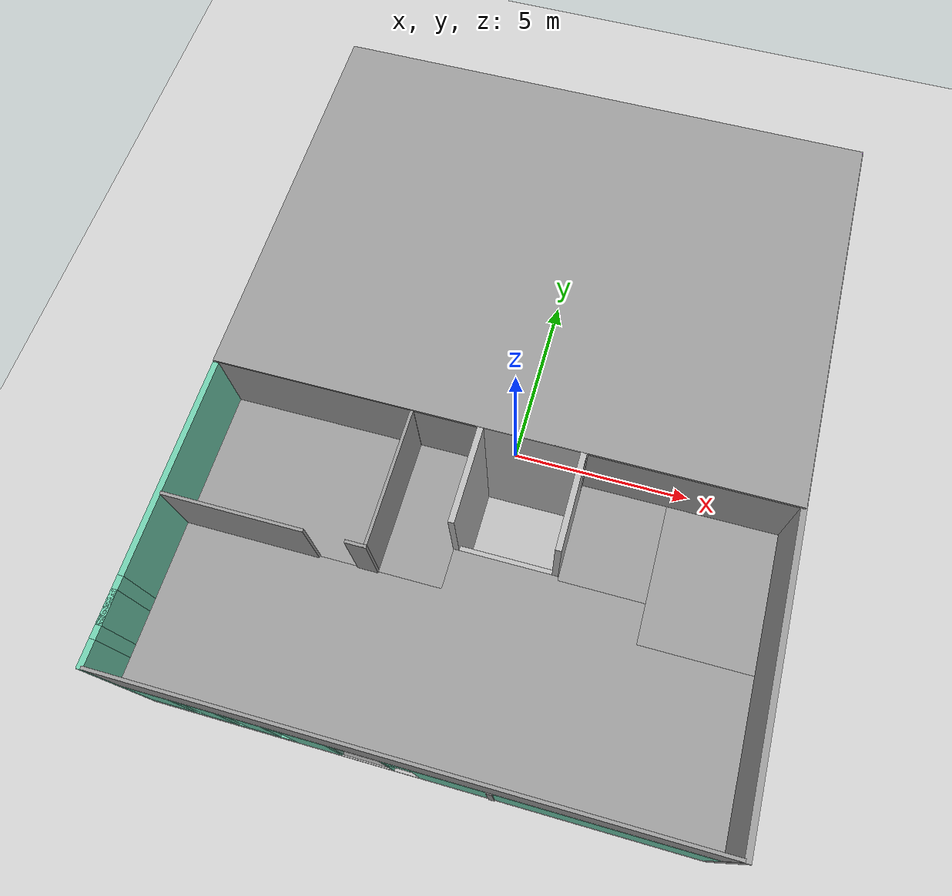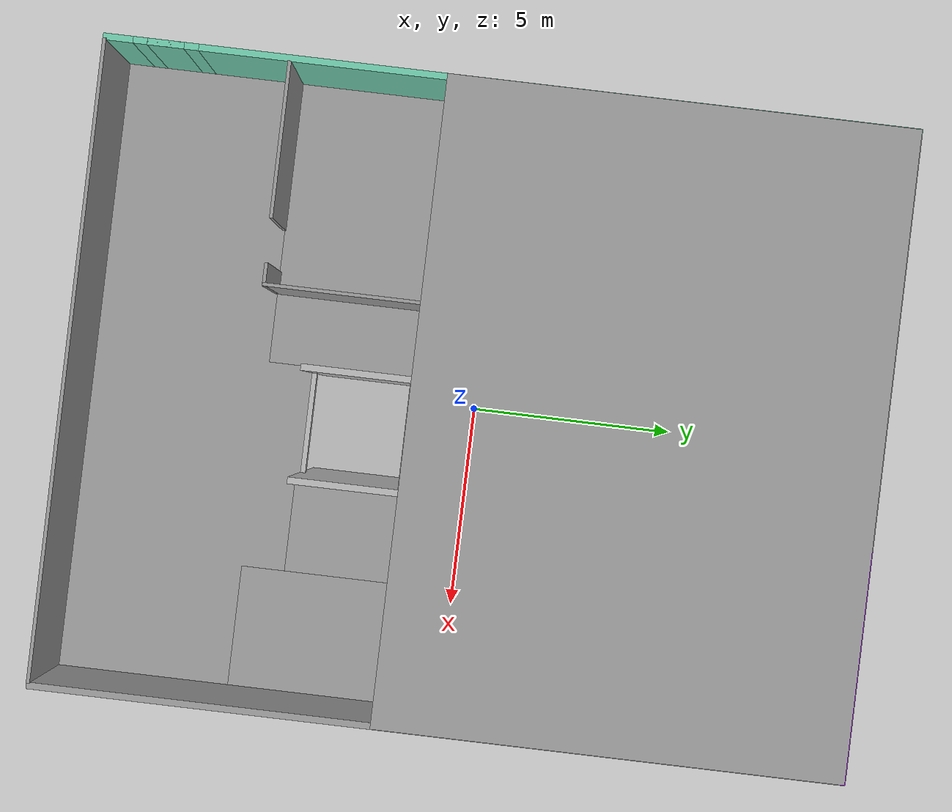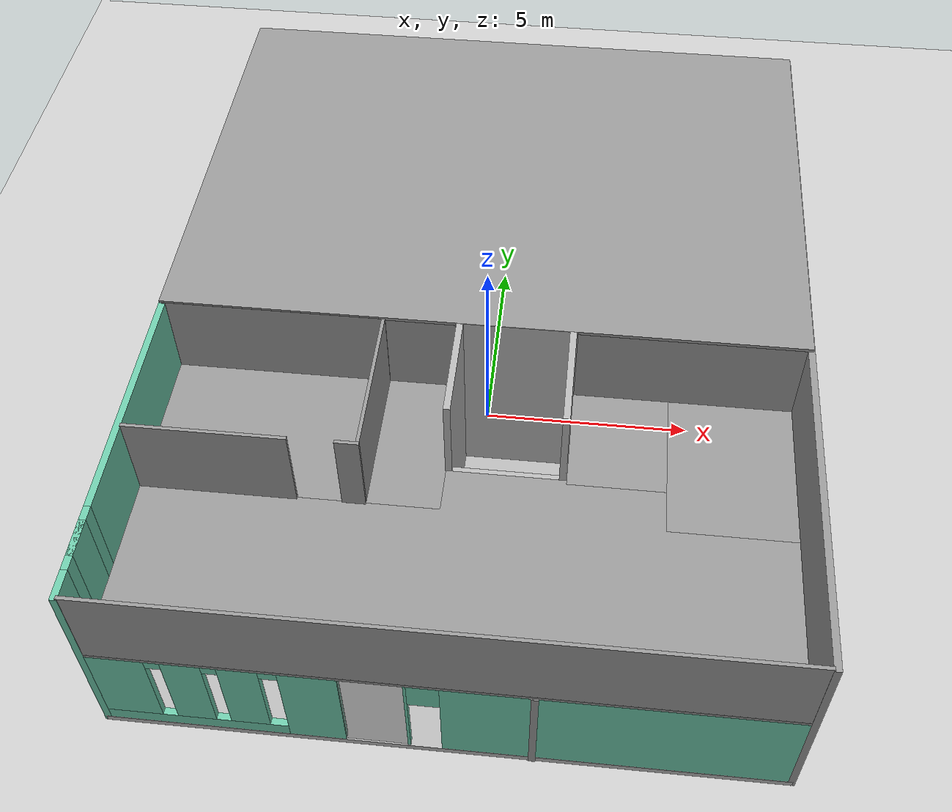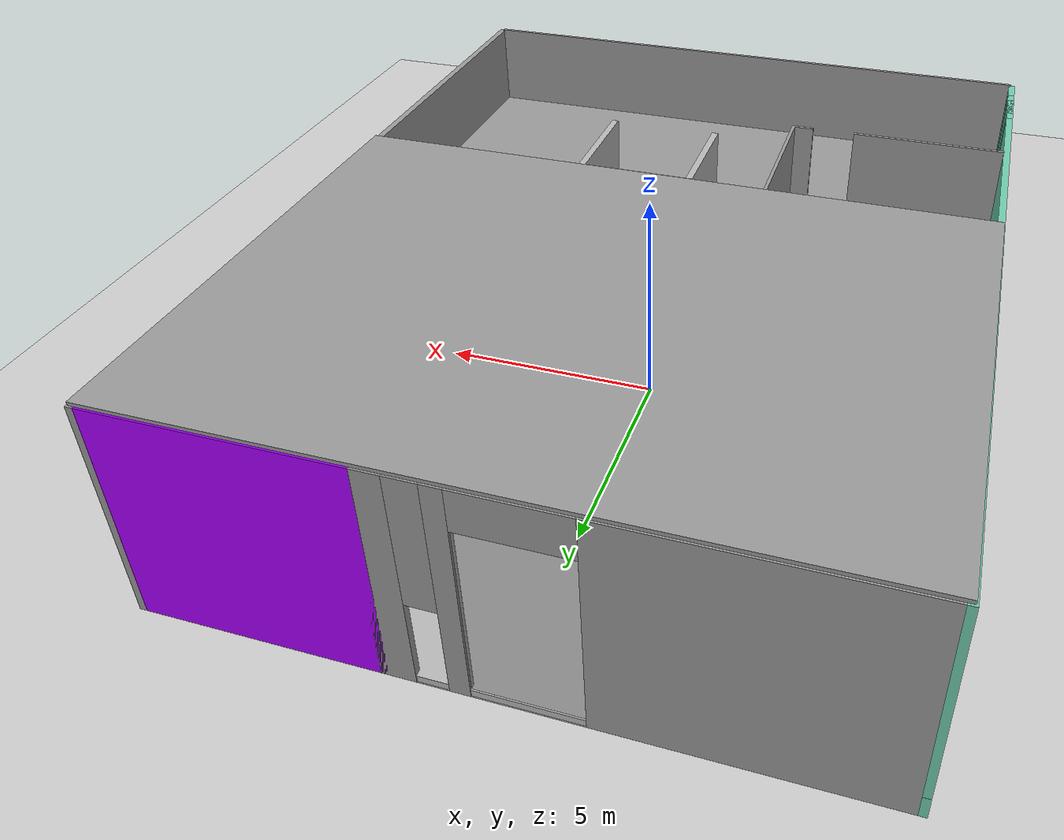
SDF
<?xml version="1.0" ?>
<sdf version="1.5">
  <world name="default">
    <!-- Disable shadows for now since they make the interiors
         look awful -->
    <scene>
      <shadows>0</shadows>
    </scene>

    <!-- Position the user camera -->
    <gui>
      <camera name="user_camera">
        <pose>16 -30 17 0 0.5235 2.09</pose>
      </camera>
    </gui>

    <!-- A global light source -->
    <include>
      <uri>model://sun</uri>
    </include>

    <!-- A ground plane -->
    <include>
      <uri>model://ground_plane</uri>
    </include>

    <!-- The OSRF building with a fictitious elevator shaft -->
    <include>
      <uri>model://osrf_elevator</uri>
    </include>

  </world>
</sdf>

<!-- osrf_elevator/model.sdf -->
<sdf version='1.5'>
  <model name='osrf_elevator'>
    <link name='Wall_0'>
      <pose>-7.17647 0.013004 0 0 0 1.57174</pose>
      <visual name='Wall_0_Visual_0'>
        <meta>
          <layer>0</layer>
        </meta>
        <pose>-8.72596 0 2.4385 0 -0 0</pose>
        <geometry>
          <box>
            <size>0.663656 0.15 4.877</size>
          </box>
        </geometry>
        <material>
          <script>
            <uri>file://media/materials/scripts/gazebo.material</uri>
            <name>Gazebo/Grey</name>
          </script>
          <ambient>0.435294 0.796078 0.67451 1</ambient>
        </material>
      </visual>
      <collision name='Wall_0_Collision_0'>
        <geometry>
          <box>
            <size>0.663656 0.15 4.877</size>
          </box>
        </geometry>
        <pose>-8.72596 0 2.4385 0 -0 0</pose>
      </collision>
      <visual name='Wall_0_Visual_1'>
        <meta>
          <layer>0</layer>
        </meta>

        <pose>0.331828 0 0.25 0 -0 0</pose>
        <geometry>
          <box>
            <size>17.4519 0.15 0.5</size>
          </box>
        </geometry>
        <material>
          <script>
            <uri>file://media/materials/scripts/gazebo.material</uri>
            <name>Gazebo/Grey</name>
          </script>
          <ambient>0.435294 0.796078 0.67451 1</ambient>
        </material>
      </visual>
      <collision name='Wall_0_Collision_1'>
        <geometry>
          <box>
            <size>17.4519 0.15 0.5</size>
          </box>
        </geometry>
        <pose>0.331828 0 0.25 0 -0 0</pose>
      </collision>
      <visual name='Wall_0_Visual_2'>
        <meta>
          <layer>0</layer>
        </meta>

        <pose>-7.67281 0 2.6885 0 -0 0</pose>
        <geometry>
          <box>
            <size>0.816657 0.15 4.377</size>
          </box>
        </geometry>
        <material>
          <script>
            <uri>file://media/materials/scripts/gazebo.material</uri>
            <name>Gazebo/Grey</name>
          </script>
          <ambient>0.435294 0.796078 0.67451 1</ambient>
        </material>
      </visual>
      <collision name='Wall_0_Collision_2'>
        <geometry>
          <box>
            <size>0.816657 0.15 4.377</size>
          </box>
        </geometry>
        <pose>-7.67281 0 2.6885 0 -0 0</pose>
      </collision>
      <visual name='Wall_0_Visual_3'>
        <meta>
          <layer>0</layer>
        </meta>

        <pose>1.05709 0 2.6885 0 -0 0</pose>
        <geometry>
          <box>
            <size>16.0014 0.15 4.377</size>
          </box>
        </geometry>
        <material>
          <script>
            <uri>file://media/materials/scripts/gazebo.material</uri>
            <name>Gazebo/Grey</name>
          </script>
          <ambient>0.435294 0.796078 0.67451 1</ambient>
        </material>
      </visual>
      <collision name='Wall_0_Collision_3'>
        <geometry>
          <box>
            <size>16.0014 0.15 4.377</size>
          </box>
        </geometry>
        <pose>1.05709 0 2.6885 0 -0 0</pose>
      </collision>
      <visual name='Wall_0_Visual_4'>
        <meta>
          <layer>0</layer>
        </meta>

        <pose>-8.23763 0 3.6885 0 -0 0</pose>
        <geometry>
          <box>
            <size>0.313 0.15 2.377</size>
          </box>
        </geometry>
        <material>
          <script>
            <uri>file://media/materials/scripts/gazebo.material</uri>
            <name>Gazebo/Grey</name>
          </script>
          <ambient>0.435294 0.796078 0.67451 1</ambient>
        </material>
      </visual>
      <collision name='Wall_0_Collision_4'>
        <geometry>
          <box>
            <size>0.313 0.15 2.377</size>
          </box>
        </geometry>
        <pose>-8.23763 0 3.6885 0 -0 0</pose>
      </collision>
      <visual name='Wall_0_Visual_5'>
        <meta>
          <layer>0</layer>
        </meta>

        <pose>-7.10405 0 3.6885 0 -0 0</pose>
        <geometry>
          <box>
            <size>0.320861 0.15 2.377</size>
          </box>
        </geometry>
        <material>
          <script>
            <uri>file://media/materials/scripts/gazebo.material</uri>
            <name>Gazebo/Grey</name>
          </script>
          <ambient>0.435294 0.796078 0.67451 1</ambient>
        </material>
      </visual>
      <collision name='Wall_0_Collision_5'>
        <geometry>
          <box>
            <size>0.320861 0.15 2.377</size>
          </box>
        </geometry>
        <pose>-7.10405 0 3.6885 0 -0 0</pose>
      </collision>
      <visual name='Wall_0_Visual_6'>
        <meta>
          <layer>0</layer>
        </meta>

        <pose>-7.67281 0 4.877 0 -0 0</pose>
        <geometry>
          <box>
            <size>0.816657 0.15 0</size>
          </box>
        </geometry>
        <material>
          <script>
            <uri>file://media/materials/scripts/gazebo.material</uri>
            <name>Gazebo/Grey</name>
          </script>
          <ambient>0.435294 0.796078 0.67451 1</ambient>
        </material>
      </visual>
      <collision name='Wall_0_Collision_6'>
        <geometry>
          <box>
            <size>0.816657 0.15 0</size>
          </box>
        </geometry>
        <pose>-7.67281 0 4.877 0 -0 0</pose>
      </collision>
      <visual name='Wall_0_Visual_7'>
        <meta>
          <layer>0</layer>
        </meta>

        <pose>1.05709 0 4.877 0 -0 0</pose>
        <geometry>
          <box>
            <size>16.0014 0.15 0</size>
          </box>
        </geometry>
        <material>
          <script>
            <uri>file://media/materials/scripts/gazebo.material</uri>
            <name>Gazebo/Grey</name>
          </script>
          <ambient>0.435294 0.796078 0.67451 1</ambient>
        </material>
      </visual>
      <collision name='Wall_0_Collision_7'>
        <geometry>
          <box>
            <size>16.0014 0.15 0</size>
          </box>
        </geometry>
        <pose>1.05709 0 4.877 0 -0 0</pose>
      </collision>
    </link>
    <link name='Wall_10'>
      <pose>3.11003 -4.9485 0 0 -0 0</pose>
      <visual name='Wall_10_Visual_0'>
        <meta>
          <layer>0</layer>
        </meta>

        <pose>-1.73626 0 1.3715 0 -0 0</pose>
        <geometry>
          <box>
            <size>4.52747 0.15 2.743</size>
          </box>
        </geometry>
        <material>
          <script>
            <uri>file://media/materials/scripts/gazebo.material</uri>
            <name>Gazebo/Grey</name>
          </script>
          <ambient>0 0.666667 0 1</ambient>
        </material>
      </visual>
      <collision name='Wall_10_Collision_0'>
        <geometry>
          <box>
            <size>4.52747 0.15 2.743</size>
          </box>
        </geometry>
        <pose>-1.73626 0 1.3715 0 -0 0</pose>
      </collision>
      <visual name='Wall_10_Visual_1'>
        <meta>
          <layer>0</layer>
        </meta>

        <pose>2.58694 0 1.3715 0 -0 0</pose>
        <geometry>
          <box>
            <size>2.82611 0.15 2.743</size>
          </box>
        </geometry>
        <material>
          <script>
            <uri>file://media/materials/scripts/gazebo.material</uri>
            <name>Gazebo/Grey</name>
          </script>
          <ambient>0 0.666667 0 1</ambient>
        </material>
      </visual>
      <collision name='Wall_10_Collision_1'>
        <geometry>
          <box>
            <size>2.82611 0.15 2.743</size>
          </box>
        </geometry>
        <pose>2.58694 0 1.3715 0 -0 0</pose>
      </collision>
      <visual name='Wall_10_Visual_2'>
        <meta>
          <layer>0</layer>
        </meta>

        <pose>0.85068 0 2.3715 0 -0 0</pose>
        <geometry>
          <box>
            <size>0.646413 0.15 0.743</size>
          </box>
        </geometry>
        <material>
          <script>
            <uri>file://media/materials/scripts/gazebo.material</uri>
            <name>Gazebo/Grey</name>
          </script>
          <ambient>0 0.666667 0 1</ambient>
        </material>
      </visual>
      <collision name='Wall_10_Collision_2'>
        <geometry>
          <box>
            <size>0.646413 0.15 0.743</size>
          </box>
        </geometry>
        <pose>0.85068 0 2.3715 0 -0 0</pose>
      </collision>
    </link>
    <link name='Wall_14'>
      <pose>1.83803 -6.9775 0 0 -0 1.5708</pose>
      <visual name='Wall_14_Visual_0'>
        <meta>
          <layer>0</layer>
        </meta>

        <pose>-0.387674 0 1.3715 0 -0 0</pose>
        <geometry>
          <box>
            <size>3.41138 0.15 2.743</size>
          </box>
        </geometry>
        <material>
          <script>
            <uri>file://media/materials/scripts/gazebo.material</uri>
            <name>Gazebo/Grey</name>
          </script>
          <ambient>1 1 1 1</ambient>
        </material>
      </visual>
      <collision name='Wall_14_Collision_0'>
        <geometry>
          <box>
            <size>3.41138 0.15 2.743</size>
          </box>
        </geometry>
        <pose>-0.387674 0 1.3715 0 -0 0</pose>
      </collision>
      <visual name='Wall_14_Visual_1'>
        <meta>
          <layer>0</layer>
        </meta>

        <pose>2.00133 0 1.3715 0 -0 0</pose>
        <geometry>
          <box>
            <size>0.184063 0.15 2.743</size>
          </box>
        </geometry>
        <material>
          <script>
            <uri>file://media/materials/scripts/gazebo.material</uri>
            <name>Gazebo/Grey</name>
          </script>
          <ambient>1 1 1 1</ambient>
        </material>
      </visual>
      <collision name='Wall_14_Collision_1'>
        <geometry>
          <box>
            <size>0.184063 0.15 2.743</size>
          </box>
        </geometry>
        <pose>2.00133 0 1.3715 0 -0 0</pose>
      </collision>
      <visual name='Wall_14_Visual_2'>
        <meta>
          <layer>0</layer>
        </meta>

        <pose>1.61366 0 2.3715 0 -0 0</pose>
        <geometry>
          <box>
            <size>0.591285 0.15 0.743</size>
          </box>
        </geometry>
        <material>
          <script>
            <uri>file://media/materials/scripts/gazebo.material</uri>
            <name>Gazebo/Grey</name>
          </script>
          <ambient>1 1 1 1</ambient>
        </material>
      </visual>
      <collision name='Wall_14_Collision_2'>
        <geometry>
          <box>
            <size>0.591285 0.15 0.743</size>
          </box>
        </geometry>
        <pose>1.61366 0 2.3715 0 -0 0</pose>
      </collision>
    </link>
    <link name='Wall_16'>
      <collision name='Wall_16_Collision'>
        <geometry>
          <box>
            <size>5.12727 0.15 2.743</size>
          </box>
        </geometry>
        <pose>0 0 1.3715 0 -0 0</pose>
      </collision>
      <visual name='Wall_16_Visual'>
        <meta>
          <layer>0</layer>
        </meta>

        <pose>0 0 1.3715 0 -0 0</pose>
        <geometry>
          <box>
            <size>5.12727 0.15 2.743</size>
          </box>
        </geometry>
        <material>
          <script>
            <uri>file://media/materials/scripts/gazebo.material</uri>
            <name>Gazebo/Grey</name>
          </script>
          <ambient>1 1 1 1</ambient>
        </material>
      </visual>
      <pose>-4.68247 -1.4425 0 0 -0 0</pose>
    </link>
    <link name='Wall_17'>
      <pose>-2.19097 -3.185 0 0 0 -1.56907</pose>
      <visual name='Wall_17_Visual_0'>
        <meta>
          <layer>0</layer>
        </meta>

        <pose>-1.22855 0 1.3715 0 -0 0</pose>
        <geometry>
          <box>
            <size>1.17851 0.15 2.743</size>
          </box>
        </geometry>
        <material>
          <script>
            <uri>file://media/materials/scripts/gazebo.material</uri>
            <name>Gazebo/Grey</name>
          </script>
          <ambient>1 1 1 1</ambient>
        </material>
      </visual>
      <collision name='Wall_17_Collision_0'>
        <geometry>
          <box>
            <size>1.17851 0.15 2.743</size>
          </box>
        </geometry>
        <pose>-1.22855 0 1.3715 0 -0 0</pose>
      </collision>
      <visual name='Wall_17_Visual_1'>
        <meta>
          <layer>0</layer>
        </meta>

        <pose>0.886237 0 1.3715 0 -0 0</pose>
        <geometry>
          <box>
            <size>1.86314 0.15 2.743</size>
          </box>
        </geometry>
        <material>
          <script>
            <uri>file://media/materials/scripts/gazebo.material</uri>
            <name>Gazebo/Grey</name>
          </script>
          <ambient>1 1 1 1</ambient>
        </material>
      </visual>
      <collision name='Wall_17_Collision_1'>
        <geometry>
          <box>
            <size>1.86314 0.15 2.743</size>
          </box>
        </geometry>
        <pose>0.886237 0 1.3715 0 -0 0</pose>
      </collision>
      <visual name='Wall_17_Visual_2'>
        <meta>
          <layer>0</layer>
        </meta>

        <pose>1.18873 0 1.3715 0 -0 0</pose>
        <geometry>
          <box>
            <size>1.25815 0.15 2.743</size>
          </box>
        </geometry>
        <material>
          <script>
            <uri>file://media/materials/scripts/gazebo.material</uri>
            <name>Gazebo/Grey</name>
          </script>
          <ambient>1 1 1 1</ambient>
        </material>
      </visual>
      <collision name='Wall_17_Collision_2'>
        <geometry>
          <box>
            <size>1.25815 0.15 2.743</size>
          </box>
        </geometry>
        <pose>1.18873 0 1.3715 0 -0 0</pose>
      </collision>
      <visual name='Wall_17_Visual_3'>
        <meta>
          <layer>0</layer>
        </meta>

        <pose>-0.345304 0 2.3715 0 -0 0</pose>
        <geometry>
          <box>
            <size>0.587991 0.15 0.743</size>
          </box>
        </geometry>
        <material>
          <script>
            <uri>file://media/materials/scripts/gazebo.material</uri>
            <name>Gazebo/Grey</name>
          </script>
          <ambient>1 1 1 1</ambient>
        </material>
      </visual>
      <collision name='Wall_17_Collision_3'>
        <geometry>
          <box>
            <size>0.587991 0.15 0.743</size>
          </box>
        </geometry>
        <pose>-0.345304 0 2.3715 0 -0 0</pose>
      </collision>
    </link>
    <link name='Wall_18'>
      <collision name='Wall_18_Collision'>
        <geometry>
          <box>
            <size>5 0.15 2.743</size>
          </box>
        </geometry>
        <pose>0 0 1.3715 0 -0 0</pose>
      </collision>
      <visual name='Wall_18_Visual'>
        <meta>
          <layer>0</layer>
        </meta>

        <pose>0 0 1.3715 0 -0 0</pose>
        <geometry>
          <box>
            <size>5 0.15 2.743</size>
          </box>
        </geometry>
        <material>
          <script>
            <uri>file://media/materials/scripts/gazebo.material</uri>
            <name>Gazebo/Grey</name>
          </script>
          <ambient>1 1 1 1</ambient>
        </material>
      </visual>
      <pose>-4.61297 -4.9275 0 0 -0 3.14159</pose>
    </link>
    <link name='Wall_20'>
      <collision name='Wall_20_Collision'>
        <geometry>
          <box>
            <size>2.88731 0.15 2.743</size>
          </box>
        </geometry>
        <pose>0 0 1.3715 0 -0 0</pose>
      </collision>
      <visual name='Wall_20_Visual'>
        <meta>
          <layer>0</layer>
        </meta>

        <pose>0 0 1.3715 0 -0 0</pose>
        <geometry>
          <box>
            <size>2.88731 0.15 2.743</size>
          </box>
        </geometry>
        <material>
          <script>
            <uri>file://media/materials/scripts/gazebo.material</uri>
            <name>Gazebo/Grey</name>
          </script>
          <ambient>1 1 1 1</ambient>
        </material>
      </visual>
      <pose>5.74253 1.037 0 0 0 -3.1383</pose>
    </link>
    <link name='Wall_21'>
      <pose>4.37403 -1.8925 0 0 0 -1.5708</pose>
      <visual name='Wall_21_Visual_0'>
        <meta>
          <layer>0</layer>
        </meta>

        <pose>-2.34405 0 1.3715 0 -0 0</pose>
        <geometry>
          <box>
            <size>1.3119 0.15 2.743</size>
          </box>
        </geometry>
        <material>
          <script>
            <uri>file://media/materials/scripts/gazebo.material</uri>
            <name>Gazebo/Grey</name>
          </script>
          <ambient>1 1 1 1</ambient>
        </material>
      </visual>
      <collision name='Wall_21_Collision_0'>
        <geometry>
          <box>
            <size>1.3119 0.15 2.743</size>
          </box>
        </geometry>
        <pose>-2.34405 0 1.3715 0 -0 0</pose>
      </collision>
      <visual name='Wall_21_Visual_1'>
        <meta>
          <layer>0</layer>
        </meta>

        <pose>-0.970323 0 1.3715 0 -0 0</pose>
        <geometry>
          <box>
            <size>0.213619 0.15 2.743</size>
          </box>
        </geometry>
        <material>
          <script>
            <uri>file://media/materials/scripts/gazebo.material</uri>
            <name>Gazebo/Grey</name>
          </script>
          <ambient>1 1 1 1</ambient>
        </material>
      </visual>
      <collision name='Wall_21_Collision_1'>
        <geometry>
          <box>
            <size>0.213619 0.15 2.743</size>
          </box>
        </geometry>
        <pose>-0.970323 0 1.3715 0 -0 0</pose>
      </collision>
      <visual name='Wall_21_Visual_2'>
        <meta>
          <layer>0</layer>
        </meta>

        <pose>0.938748 0 1.3715 0 -0 0</pose>
        <geometry>
          <box>
            <size>2.36558 0.15 2.743</size>
          </box>
        </geometry>
        <material>
          <script>
            <uri>file://media/materials/scripts/gazebo.material</uri>
            <name>Gazebo/Grey</name>
          </script>
          <ambient>1 1 1 1</ambient>
        </material>
      </visual>
      <collision name='Wall_21_Collision_2'>
        <geometry>
          <box>
            <size>2.36558 0.15 2.743</size>
          </box>
        </geometry>
        <pose>0.938748 0 1.3715 0 -0 0</pose>
      </collision>
      <visual name='Wall_21_Visual_3'>
        <meta>
          <layer>0</layer>
        </meta>

        <pose>2.89346 0 1.3715 0 -0 0</pose>
        <geometry>
          <box>
            <size>0.213086 0.15 2.743</size>
          </box>
        </geometry>
        <material>
          <script>
            <uri>file://media/materials/scripts/gazebo.material</uri>
            <name>Gazebo/Grey</name>
          </script>
          <ambient>1 1 1 1</ambient>
        </material>
      </visual>
      <collision name='Wall_21_Collision_3'>
        <geometry>
          <box>
            <size>0.213086 0.15 2.743</size>
          </box>
        </geometry>
        <pose>2.89346 0 1.3715 0 -0 0</pose>
      </collision>
      <visual name='Wall_21_Visual_4'>
        <meta>
          <layer>0</layer>
        </meta>

        <pose>-1.38262 0 2.3715 0 -0 0</pose>
        <geometry>
          <box>
            <size>0.610969 0.15 0.743</size>
          </box>
        </geometry>
        <material>
          <script>
            <uri>file://media/materials/scripts/gazebo.material</uri>
            <name>Gazebo/Grey</name>
          </script>
          <ambient>1 1 1 1</ambient>
        </material>
      </visual>
      <collision name='Wall_21_Collision_4'>
        <geometry>
          <box>
            <size>0.610969 0.15 0.743</size>
          </box>
        </geometry>
        <pose>-1.38262 0 2.3715 0 -0 0</pose>
      </collision>
      <visual name='Wall_21_Visual_5'>
        <meta>
          <layer>0</layer>
        </meta>

        <pose>-0.553779 0 2.3715 0 -0 0</pose>
        <geometry>
          <box>
            <size>0.61947 0.15 0.743</size>
          </box>
        </geometry>
        <material>
          <script>
            <uri>file://media/materials/scripts/gazebo.material</uri>
            <name>Gazebo/Grey</name>
          </script>
          <ambient>1 1 1 1</ambient>
        </material>
      </visual>
      <collision name='Wall_21_Collision_5'>
        <geometry>
          <box>
            <size>0.61947 0.15 0.743</size>
          </box>
        </geometry>
        <pose>-0.553779 0 2.3715 0 -0 0</pose>
      </collision>
      <visual name='Wall_21_Visual_6'>
        <meta>
          <layer>0</layer>
        </meta>

        <pose>2.45423 0 2.3715 0 -0 0</pose>
        <geometry>
          <box>
            <size>0.665375 0.15 0.743</size>
          </box>
        </geometry>
        <material>
          <script>
            <uri>file://media/materials/scripts/gazebo.material</uri>
            <name>Gazebo/Grey</name>
          </script>
          <ambient>1 1 1 1</ambient>
        </material>
      </visual>
      <collision name='Wall_21_Collision_6'>
        <geometry>
          <box>
            <size>0.665375 0.15 0.743</size>
          </box>
        </geometry>
        <pose>2.45423 0 2.3715 0 -0 0</pose>
      </collision>
    </link>
    <link name='Wall_23'>
      <collision name='Wall_23_Collision'>
        <geometry>
          <box>
            <size>2.75 0.15 2.743</size>
          </box>
        </geometry>
        <pose>0 0 1.3715 0 -0 0</pose>
      </collision>
      <visual name='Wall_23_Visual'>
        <meta>
          <layer>0</layer>
        </meta>

        <pose>0 0 1.3715 0 -0 0</pose>
        <geometry>
          <box>
            <size>2.75 0.15 2.743</size>
          </box>
        </geometry>
        <material>
          <script>
            <uri>file://media/materials/scripts/gazebo.material</uri>
            <name>Gazebo/Grey</name>
          </script>
          <ambient>1 1 1 1</ambient>
        </material>
      </visual>
      <pose>5.74203 -2.9565 0 0 -0 0</pose>
    </link>
    <link name='Wall_25'>
      <collision name='Wall_25_Collision'>
        <geometry>
          <box>
            <size>2.75 0.15 2.743</size>
          </box>
        </geometry>
        <pose>0 0 1.3715 0 -0 0</pose>
      </collision>
      <visual name='Wall_25_Visual'>
        <meta>
          <layer>0</layer>
        </meta>

        <pose>0 0 1.3715 0 -0 0</pose>
        <geometry>
          <box>
            <size>2.75 0.15 2.743</size>
          </box>
        </geometry>
        <material>
          <script>
            <uri>file://media/materials/scripts/gazebo.material</uri>
            <name>Gazebo/Grey</name>
          </script>
          <ambient>1 1 1 1</ambient>
        </material>
      </visual>
      <pose>5.76203 -0.932496 0 0 -0 0</pose>
    </link>
    <link name='Wall_27'>
      <collision name='Wall_27_Collision'>
        <geometry>
          <box>
            <size>4 0.15 2.743</size>
          </box>
        </geometry>
        <pose>0 0 1.3715 0 -0 0</pose>
      </collision>
      <visual name='Wall_27_Visual'>
        <meta>
          <layer>0</layer>
        </meta>

        <pose>0 0 1.3715 0 -0 0</pose>
        <geometry>
          <box>
            <size>4 0.15 2.743</size>
          </box>
        </geometry>
        <material>
          <script>
            <uri>file://media/materials/scripts/gazebo.material</uri>
            <name>Gazebo/Grey</name>
          </script>
          <ambient>1 1 1 1</ambient>
        </material>
      </visual>
      <pose>4.75503 -7.0125 0 0 -0 1.5708</pose>
    </link>
    <link name='Wall_29'>
      <collision name='Wall_29_Collision'>
        <geometry>
          <box>
            <size>1.39187 0.15 4.877</size>
          </box>
        </geometry>
        <pose>0 0 2.4385 0 -0 0</pose>
      </collision>
      <visual name='Wall_29_Visual'>
        <meta>
          <layer>0</layer>
        </meta>

        <pose>0 0 2.4385 0 -0 0</pose>
        <geometry>
          <box>
            <size>1.39187 0.15 4.877</size>
          </box>
        </geometry>
        <material>
          <script>
            <uri>file://media/materials/scripts/gazebo.material</uri>
            <name>Gazebo/Grey</name>
          </script>
          <ambient>0.996078 0.47451 0.0196078 1</ambient>
        </material>
      </visual>
      <pose>-6.49697 4.1045 0 0 -0 0</pose>
    </link>
    <link name='Wall_30'>
      <collision name='Wall_30_Collision'>
        <geometry>
          <box>
            <size>3 0.15 4.877</size>
          </box>
        </geometry>
        <pose>0 0 2.4385 0 -0 0</pose>
      </collision>
      <visual name='Wall_30_Visual'>
        <meta>
          <layer>0</layer>
        </meta>

        <pose>0 0 2.4385 0 -0 0</pose>
        <geometry>
          <box>
            <size>3 0.15 4.877</size>
          </box>
        </geometry>
        <material>
          <script>
            <uri>file://media/materials/scripts/gazebo.material</uri>
            <name>Gazebo/Grey</name>
          </script>
          <ambient>1 1 1 1</ambient>
        </material>
      </visual>
      <pose>-5.87597 5.5295 0 0 -0 1.5708</pose>
    </link>
    <link name='Wall_31'>
      <pose>-6.50397 6.9525 0 0 0 -3.13841</pose>
      <visual name='Wall_31_Visual_0'>
        <meta>
          <layer>0</layer>
        </meta>

        <pose>-0.567544 0 2.4385 0 -0 0</pose>
        <geometry>
          <box>
            <size>0.271575 0.15 4.877</size>
          </box>
        </geometry>
        <material>
          <script>
            <uri>file://media/materials/scripts/gazebo.material</uri>
            <name>Gazebo/Grey</name>
          </script>
          <ambient>1 1 1 1</ambient>
        </material>
      </visual>
      <collision name='Wall_31_Collision_0'>
        <geometry>
          <box>
            <size>0.271575 0.15 4.877</size>
          </box>
        </geometry>
        <pose>-0.567544 0 2.4385 0 -0 0</pose>
      </collision>
      <visual name='Wall_31_Visual_1'>
        <meta>
          <layer>0</layer>
        </meta>

        <pose>0.441678 0 2.4385 0 -0 0</pose>
        <geometry>
          <box>
            <size>0.523307 0.15 4.877</size>
          </box>
        </geometry>
        <material>
          <script>
            <uri>file://media/materials/scripts/gazebo.material</uri>
            <name>Gazebo/Grey</name>
          </script>
          <ambient>1 1 1 1</ambient>
        </material>
      </visual>
      <collision name='Wall_31_Collision_1'>
        <geometry>
          <box>
            <size>0.523307 0.15 4.877</size>
          </box>
        </geometry>
        <pose>0.441678 0 2.4385 0 -0 0</pose>
      </collision>
      <visual name='Wall_31_Visual_2'>
        <meta>
          <layer>0</layer>
        </meta>

        <pose>-0.125866 0 0 0 -0 0</pose>
        <geometry>
          <box>
            <size>0.611781 0.15 0</size>
          </box>
        </geometry>
        <material>
          <script>
            <uri>file://media/materials/scripts/gazebo.material</uri>
            <name>Gazebo/Grey</name>
          </script>
          <ambient>1 1 1 1</ambient>
        </material>
      </visual>
      <collision name='Wall_31_Collision_2'>
        <geometry>
          <box>
            <size>0.611781 0.15 0</size>
          </box>
        </geometry>
        <pose>-0.125866 0 0 0 -0 0</pose>
      </collision>
      <visual name='Wall_31_Visual_3'>
        <meta>
          <layer>0</layer>
        </meta>

        <pose>-0.125866 0 3.4385 0 -0 0</pose>
        <geometry>
          <box>
            <size>0.611781 0.15 2.877</size>
          </box>
        </geometry>
        <material>
          <script>
            <uri>file://media/materials/scripts/gazebo.material</uri>
            <name>Gazebo/Grey</name>
          </script>
          <ambient>1 1 1 1</ambient>
        </material>
      </visual>
      <collision name='Wall_31_Collision_3'>
        <geometry>
          <box>
            <size>0.611781 0.15 2.877</size>
          </box>
        </geometry>
        <pose>-0.125866 0 3.4385 0 -0 0</pose>
      </collision>
    </link>
    <link name='Wall_35'>
      <pose>-2.50997 8.9955 0 0 -0 0</pose>
      <visual name='Wall_35_Visual_0'>
        <meta>
          <layer>0</layer>
        </meta>

        <pose>-1.92197 0 2.4385 0 -0 0</pose>
        <geometry>
          <box>
            <size>5.65606 0.15 4.877</size>
          </box>
        </geometry>
        <material>
          <script>
            <uri>file://media/materials/scripts/gazebo.material</uri>
            <name>Gazebo/Grey</name>
          </script>
          <ambient>1 1 1 1</ambient>
        </material>
      </visual>
      <collision name='Wall_35_Collision_0'>
        <geometry>
          <box>
            <size>5.65606 0.15 4.877</size>
          </box>
        </geometry>
        <pose>-1.92197 0 2.4385 0 -0 0</pose>
      </collision>
      <visual name='Wall_35_Visual_1'>
        <meta>
          <layer>0</layer>
        </meta>

        <pose>3.22541 0 2.4385 0 -0 0</pose>
        <geometry>
          <box>
            <size>0.406701 0.15 4.877</size>
          </box>
        </geometry>
        <material>
          <script>
            <uri>file://media/materials/scripts/gazebo.material</uri>
            <name>Gazebo/Grey</name>
          </script>
          <ambient>1 1 1 1</ambient>
        </material>
      </visual>
      <collision name='Wall_35_Collision_1'>
        <geometry>
          <box>
            <size>0.406701 0.15 4.877</size>
          </box>
        </geometry>
        <pose>3.22541 0 2.4385 0 -0 0</pose>
      </collision>
      <visual name='Wall_35_Visual_2'>
        <meta>
          <layer>0</layer>
        </meta>

        <pose>4.40208 0 2.4385 0 -0 0</pose>
        <geometry>
          <box>
            <size>0.695843 0.15 4.877</size>
          </box>
        </geometry>
        <material>
          <script>
            <uri>file://media/materials/scripts/gazebo.material</uri>
            <name>Gazebo/Grey</name>
          </script>
          <ambient>1 1 1 1</ambient>
        </material>
      </visual>
      <collision name='Wall_35_Collision_2'>
        <geometry>
          <box>
            <size>0.695843 0.15 4.877</size>
          </box>
        </geometry>
        <pose>4.40208 0 2.4385 0 -0 0</pose>
      </collision>
      <visual name='Wall_35_Visual_3'>
        <meta>
          <layer>0</layer>
        </meta>

        <pose>1.96406 0 0 0 -0 0</pose>
        <geometry>
          <box>
            <size>2.116 0.15 0</size>
          </box>
        </geometry>
        <material>
          <script>
            <uri>file://media/materials/scripts/gazebo.material</uri>
            <name>Gazebo/Grey</name>
          </script>
          <ambient>1 1 1 1</ambient>
        </material>
      </visual>
      <collision name='Wall_35_Collision_3'>
        <geometry>
          <box>
            <size>2.116 0.15 0</size>
          </box>
        </geometry>
        <pose>1.96406 0 0 0 -0 0</pose>
      </collision>
      <visual name='Wall_35_Visual_4'>
        <meta>
          <layer>0</layer>
        </meta>

        <pose>3.74146 0 0 0 -0 0</pose>
        <geometry>
          <box>
            <size>0.625391 0.15 0</size>
          </box>
        </geometry>
        <material>
          <script>
            <uri>file://media/materials/scripts/gazebo.material</uri>
            <name>Gazebo/Grey</name>
          </script>
          <ambient>1 1 1 1</ambient>
        </material>
      </visual>
      <collision name='Wall_35_Collision_4'>
        <geometry>
          <box>
            <size>0.625391 0.15 0</size>
          </box>
        </geometry>
        <pose>3.74146 0 0 0 -0 0</pose>
      </collision>
      <visual name='Wall_35_Visual_5'>
        <meta>
          <layer>0</layer>
        </meta>

        <pose>3.74146 0 3.4385 0 -0 0</pose>
        <geometry>
          <box>
            <size>0.625391 0.15 2.877</size>
          </box>
        </geometry>
        <material>
          <script>
            <uri>file://media/materials/scripts/gazebo.material</uri>
            <name>Gazebo/Grey</name>
          </script>
          <ambient>1 1 1 1</ambient>
        </material>
      </visual>
      <collision name='Wall_35_Collision_5'>
        <geometry>
          <box>
            <size>0.625391 0.15 2.877</size>
          </box>
        </geometry>
        <pose>3.74146 0 3.4385 0 -0 0</pose>
      </collision>
      <visual name='Wall_35_Visual_6'>
        <meta>
          <layer>0</layer>
        </meta>

        <pose>1.96406 0 4.4385 0 -0 0</pose>
        <geometry>
          <box>
            <size>2.116 0.15 0.877</size>
          </box>
        </geometry>
        <material>
          <script>
            <uri>file://media/materials/scripts/gazebo.material</uri>
            <name>Gazebo/Grey</name>
          </script>
          <ambient>1 1 1 1</ambient>
        </material>
      </visual>
      <collision name='Wall_35_Collision_6'>
        <geometry>
          <box>
            <size>2.116 0.15 0.877</size>
          </box>
        </geometry>
        <pose>1.96406 0 4.4385 0 -0 0</pose>
      </collision>
    </link>
    <link name='Wall_36'>
      <collision name='Wall_36_Collision'>
        <geometry>
          <box>
            <size>5.17 0.15 4.877</size>
          </box>
        </geometry>
        <pose>0 0 2.4385 0 -0 0</pose>
      </collision>
      <visual name='Wall_36_Visual'>
        <meta>
          <layer>0</layer>
        </meta>

        <pose>0 0 2.4385 0 -0 0</pose>
        <geometry>
          <box>
            <size>5.17 0.15 4.877</size>
          </box>
        </geometry>
        <material>
          <script>
            <uri>file://media/materials/scripts/gazebo.material</uri>
            <name>Gazebo/Grey</name>
          </script>
          <ambient>0.666667 0 1 1</ambient>
        </material>
      </visual>
      <pose>4.67503 8.9955 0 0 -0 0</pose>
    </link>
    <link name='Wall_5'>
      <collision name='Wall_5_Collision'>
        <geometry>
          <box>
            <size>18.1152 0.15 4.877</size>
          </box>
        </geometry>
        <pose>0 0 2.4385 0 -0 0</pose>
      </collision>
      <visual name='Wall_5_Visual'>
        <meta>
          <layer>0</layer>
        </meta>

        <pose>0 0 2.4385 0 -0 0</pose>
        <geometry>
          <box>
            <size>18.1152 0.15 4.877</size>
          </box>
        </geometry>
        <material>
          <script>
            <uri>file://media/materials/scripts/gazebo.material</uri>
            <name>Gazebo/Grey</name>
          </script>
          <ambient>1 1 1 1</ambient>
        </material>
      </visual>
      <pose>7.18353 0.013004 0 0 0 -1.57096</pose>
    </link>
    <link name='Wall_6'>
      <pose>0.007029 -8.9695 0 0 -0 3.14159</pose>
      <visual name='Wall_6_Visual_0'>
        <meta>
          <layer>0</layer>
        </meta>

        <pose>-3.60425 0 1.365 0 -0 0</pose>
        <geometry>
          <box>
            <size>7.2915 0.15 2.73</size>
          </box>
        </geometry>
        <material>
          <script>
            <uri>file://media/materials/scripts/gazebo.material</uri>
            <name>Gazebo/Grey</name>
          </script>
          <ambient>0.435294 0.796078 0.67451 1</ambient>
        </material>
      </visual>
      <collision name='Wall_6_Collision_0'>
        <geometry>
          <box>
            <size>7.2915 0.15 2.73</size>
          </box>
        </geometry>
        <pose>-3.60425 0 1.365 0 -0 0</pose>
      </collision>
      <visual name='Wall_6_Visual_1'>
        <meta>
          <layer>0</layer>
        </meta>

        <pose>0.726241 0 1.365 0 -0 0</pose>
        <geometry>
          <box>
            <size>0.056893 0.15 2.73</size>
          </box>
        </geometry>
        <material>
          <script>
            <uri>file://media/materials/scripts/gazebo.material</uri>
            <name>Gazebo/Grey</name>
          </script>
          <ambient>0.435294 0.796078 0.67451 1</ambient>
        </material>
      </visual>
      <collision name='Wall_6_Collision_1'>
        <geometry>
          <box>
            <size>0.056893 0.15 2.73</size>
          </box>
        </geometry>
        <pose>0.726241 0 1.365 0 -0 0</pose>
      </collision>
      <visual name='Wall_6_Visual_2'>
        <meta>
          <layer>0</layer>
        </meta>

        <pose>2.65105 0 1.365 0 -0 0</pose>
        <geometry>
          <box>
            <size>1.19273 0.15 2.73</size>
          </box>
        </geometry>
        <material>
          <script>
            <uri>file://media/materials/scripts/gazebo.material</uri>
            <name>Gazebo/Grey</name>
          </script>
          <ambient>0.435294 0.796078 0.67451 1</ambient>
        </material>
      </visual>
      <collision name='Wall_6_Collision_2'>
        <geometry>
          <box>
            <size>1.19273 0.15 2.73</size>
          </box>
        </geometry>
        <pose>2.65105 0 1.365 0 -0 0</pose>
      </collision>
      <visual name='Wall_6_Visual_3'>
        <meta>
          <layer>0</layer>
        </meta>

        <pose>1.40469 0 0 0 -0 0</pose>
        <geometry>
          <box>
            <size>1.3 0.15 0</size>
          </box>
        </geometry>
        <material>
          <script>
            <uri>file://media/materials/scripts/gazebo.material</uri>
            <name>Gazebo/Grey</name>
          </script>
          <ambient>0.435294 0.796078 0.67451 1</ambient>
        </material>
      </visual>
      <collision name='Wall_6_Collision_3'>
        <geometry>
          <box>
            <size>1.3 0.15 0</size>
          </box>
        </geometry>
        <pose>1.40469 0 0 0 -0 0</pose>
      </collision>
      <visual name='Wall_6_Visual_4'>
        <meta>
          <layer>0</layer>
        </meta>

        <pose>5.24871 0 0.25 0 -0 0</pose>
        <geometry>
          <box>
            <size>4.00258 0.15 0.5</size>
          </box>
        </geometry>
        <material>
          <script>
            <uri>file://media/materials/scripts/gazebo.material</uri>
            <name>Gazebo/Grey</name>
          </script>
          <ambient>0.435294 0.796078 0.67451 1</ambient>
        </material>
      </visual>
      <collision name='Wall_6_Collision_4'>
        <geometry>
          <box>
            <size>4.00258 0.15 0.5</size>
          </box>
        </geometry>
        <pose>5.24871 0 0.25 0 -0 0</pose>
      </collision>
      <visual name='Wall_6_Visual_5'>
        <meta>
          <layer>0</layer>
        </meta>

        <pose>4.0419 0 1.615 0 -0 0</pose>
        <geometry>
          <box>
            <size>0.828969 0.15 2.23</size>
          </box>
        </geometry>
        <material>
          <script>
            <uri>file://media/materials/scripts/gazebo.material</uri>
            <name>Gazebo/Grey</name>
          </script>
          <ambient>0.435294 0.796078 0.67451 1</ambient>
        </material>
      </visual>
      <collision name='Wall_6_Collision_5'>
        <geometry>
          <box>
            <size>0.828969 0.15 2.23</size>
          </box>
        </geometry>
        <pose>4.0419 0 1.615 0 -0 0</pose>
      </collision>
      <visual name='Wall_6_Visual_6'>
        <meta>
          <layer>0</layer>
        </meta>

        <pose>5.18099 0 1.615 0 -0 0</pose>
        <geometry>
          <box>
            <size>0.819207 0.15 2.23</size>
          </box>
        </geometry>
        <material>
          <script>
            <uri>file://media/materials/scripts/gazebo.material</uri>
            <name>Gazebo/Grey</name>
          </script>
          <ambient>0.435294 0.796078 0.67451 1</ambient>
        </material>
      </visual>
      <collision name='Wall_6_Collision_6'>
        <geometry>
          <box>
            <size>0.819207 0.15 2.23</size>
          </box>
        </geometry>
        <pose>5.18099 0 1.615 0 -0 0</pose>
      </collision>
      <visual name='Wall_6_Visual_7'>
        <meta>
          <layer>0</layer>
        </meta>

        <pose>6.58056 0 1.615 0 -0 0</pose>
        <geometry>
          <box>
            <size>1.33888 0.15 2.23</size>
          </box>
        </geometry>
        <material>
          <script>
            <uri>file://media/materials/scripts/gazebo.material</uri>
            <name>Gazebo/Grey</name>
          </script>
          <ambient>0.435294 0.796078 0.67451 1</ambient>
        </material>
      </visual>
      <collision name='Wall_6_Collision_7'>
        <geometry>
          <box>
            <size>1.33888 0.15 2.23</size>
          </box>
        </geometry>
        <pose>6.58056 0 1.615 0 -0 0</pose>
      </collision>
      <visual name='Wall_6_Visual_8'>
        <meta>
          <layer>0</layer>
        </meta>

        <pose>0.369648 0 2.365 0 -0 0</pose>
        <geometry>
          <box>
            <size>0.656294 0.15 0.73</size>
          </box>
        </geometry>
        <material>
          <script>
            <uri>file://media/materials/scripts/gazebo.material</uri>
            <name>Gazebo/Grey</name>
          </script>
          <ambient>0.435294 0.796078 0.67451 1</ambient>
        </material>
      </visual>
      <collision name='Wall_6_Collision_8'>
        <geometry>
          <box>
            <size>0.656294 0.15 0.73</size>
          </box>
        </geometry>
        <pose>0.369648 0 2.365 0 -0 0</pose>
      </collision>
      <visual name='Wall_6_Visual_9'>
        <meta>
          <layer>0</layer>
        </meta>

        <pose>3.43742 0 2.615 0 -0 0</pose>
        <geometry>
          <box>
            <size>0.38 0.15 0.23</size>
          </box>
        </geometry>
        <material>
          <script>
            <uri>file://media/materials/scripts/gazebo.material</uri>
            <name>Gazebo/Grey</name>
          </script>
          <ambient>0.435294 0.796078 0.67451 1</ambient>
        </material>
      </visual>
      <collision name='Wall_6_Collision_9'>
        <geometry>
          <box>
            <size>0.38 0.15 0.23</size>
          </box>
        </geometry>
        <pose>3.43742 0 2.615 0 -0 0</pose>
      </collision>
      <visual name='Wall_6_Visual_10'>
        <meta>
          <layer>0</layer>
        </meta>

        <pose>4.61389 0 2.615 0 -0 0</pose>
        <geometry>
          <box>
            <size>0.315 0.15 0.23</size>
          </box>
        </geometry>
        <material>
          <script>
            <uri>file://media/materials/scripts/gazebo.material</uri>
            <name>Gazebo/Grey</name>
          </script>
          <ambient>0.435294 0.796078 0.67451 1</ambient>
        </material>
      </visual>
      <collision name='Wall_6_Collision_10'>
        <geometry>
          <box>
            <size>0.315 0.15 0.23</size>
          </box>
        </geometry>
        <pose>4.61389 0 2.615 0 -0 0</pose>
      </collision>
      <visual name='Wall_6_Visual_11'>
        <meta>
          <layer>0</layer>
        </meta>

        <pose>5.75086 0 2.615 0 -0 0</pose>
        <geometry>
          <box>
            <size>0.320532 0.15 0.23</size>
          </box>
        </geometry>
        <material>
          <script>
            <uri>file://media/materials/scripts/gazebo.material</uri>
            <name>Gazebo/Grey</name>
          </script>
          <ambient>0.435294 0.796078 0.67451 1</ambient>
        </material>
      </visual>
      <collision name='Wall_6_Collision_11'>
        <geometry>
          <box>
            <size>0.320532 0.15 0.23</size>
          </box>
        </geometry>
        <pose>5.75086 0 2.615 0 -0 0</pose>
      </collision>
    </link>

    <link name="front_window">
      <pose>-1.42369 -8.998083 1.364212 0 0 0</pose>
      <collision name='front_window_collision'>
        <geometry>
          <box>
            <size>1.374220 0.034702 2.727680</size>
          </box>
        </geometry>
      </collision>

      <visual name='front_window_visual'>
        <meta>
          <layer>0</layer>
        </meta>

        <geometry>
          <box>
            <size>1.374220 0.034702 2.727680</size>
          </box>
        </geometry>
        <material>
          <script>
            <name>Gazebo/GreyTransparent</name>
          </script>
        </material>
      </visual>
    </link>

    <link name="garage_door">
      <pose>-0.536243 9 2 0 0 0</pose>
      <collision name='collision'>
        <geometry>
          <box>
            <size>2.195150 0.034702 4</size>
          </box>
        </geometry>
      </collision>

      <visual name='visual'>
        <meta>
          <layer>0</layer>
        </meta>

        <geometry>
          <box>
            <size>2.1915150 0.034702 4</size>
          </box>
        </geometry>
        <material>
          <script>
            <name>Gazebo/GreyTransparent</name>
          </script>
        </material>
      </visual>
    </link>

    <link name="ceiling1_part1">
      <pose>0.055266 -6.456813 2.769277 0 0 0</pose>
      <collision name='collision'>
        <geometry>
          <box>
            <size>14.4026 5.175 0.078</size>
          </box>
        </geometry>
      </collision>

      <visual name='visual'>
        <meta>
          <layer>1</layer>
        </meta>
        <geometry>
          <box>
            <size>14.4026 5.175 0.078</size>
          </box>
        </geometry>
        <material>
          <script>
            <name>Gazebo/Grey</name>
          </script>
        </material>
      </visual>
    </link>

    <link name="ceiling1_part2">
      <pose>-3.855680 -3.132629 2.769280 0 0 0</pose>
      <collision name='collision'>
        <geometry>
          <box>
            <size>6.64939 3.530760 0.078</size>
          </box>
        </geometry>
      </collision>

      <visual name='visual'>
        <meta>
          <layer>1</layer>
        </meta>

        <geometry>
          <box>
            <size>6.64939 3.530760 0.078</size>
          </box>
        </geometry>
        <material>
          <script>
            <name>Gazebo/Grey</name>
          </script>
        </material>
      </visual>
    </link>

    <link name="ceiling1_part3">
      <pose>5.712968 -1.935853 2.769280 0 0 0</pose>
      <collision name='collision'>
        <geometry>
          <box>
            <size>2.82725 6.08484 0.078</size>
          </box>
        </geometry>
      </collision>

      <visual name='visual'>
        <meta>
          <layer>1</layer>
        </meta>
        <geometry>
          <box>
            <size>2.82725 6.08484 0.078</size>
          </box>
        </geometry>
        <material>
          <script>
            <name>Gazebo/Grey</name>
          </script>
        </material>
      </visual>
    </link>

    <link name="ceiling1_part4">
      <pose>0 3.798233 4.915876 0 0 0</pose>
      <collision name='collision'>
        <geometry>
          <box>
            <size>14.4595 10.4662 0.078</size>
          </box>
        </geometry>
      </collision>

      <visual name='visual'>
        <meta>
          <layer>1</layer>
        </meta>

        <geometry>
          <box>
            <size>14.4595 10.4662 0.078</size>
          </box>
        </geometry>
        <material>
          <script>
            <name>Gazebo/Grey</name>
          </script>
        </material>
      </visual>
    </link>

    <link name="floor1_part5">
      <pose>-4.650456 -1.397279 3.857941 1.570796 0 0</pose>
      <collision name='collision'>
        <geometry>
          <box>
            <size>5.03711 2.0998 0.078</size>
          </box>
        </geometry>
      </collision>

      <visual name='visual'>
        <meta>
          <layer>1</layer>
        </meta>
        <geometry>
          <box>
            <size>5.03711 2.0998 0.078</size>
          </box>
        </geometry>
        <material>
          <script>
            <name>Gazebo/Grey</name>
          </script>
        </material>
      </visual>
    </link>

    <link name="floor1_part6">
      <pose>5.717828 1.067046 3.858281 1.570796 0 0</pose>
      <collision name='collision'>
        <geometry>
          <box>
            <size>2.83967 2.0998 0.078</size>
          </box>
        </geometry>
      </collision>

      <visual name='visual'>
        <meta>
          <layer>1</layer>
        </meta>

        <geometry>
          <box>
            <size>2.83967 2.0998 0.078</size>
          </box>
        </geometry>
        <material>
          <script>
            <name>Gazebo/Grey</name>
          </script>
        </material>
      </visual>
    </link>

    <link name="floor1_part7">
      <pose>2.399415 -1.390577 3.858281 1.570796 0 0</pose>
      <collision name='collision'>
        <geometry>
          <box>
            <size>9.430260 2.0998 0.078</size>
          </box>
        </geometry>
      </collision>

      <visual name='visual'>
        <meta>
          <layer>1</layer>
        </meta>
        <geometry>
          <box>
            <size>9.430260 2.0998 0.078</size>
          </box>
        </geometry>
        <material>
          <script>
            <name>Gazebo/Grey</name>
          </script>
        </material>
      </visual>
    </link>

    <link name="floor1_part8">
      <pose>0 -9 3.864610 1.570796 0 0</pose>
      <collision name='collision'>
        <geometry>
          <box>
            <size>14.2592 2.0998 0.078</size>
          </box>
        </geometry>
      </collision>

      <visual name='visual'>
        <meta>
          <layer>1</layer>
        </meta>
        <geometry>
          <box>
            <size>14.2592 2.0998 0.078</size>
          </box>
        </geometry>
        <material>
          <script>
            <name>Gazebo/Grey</name>
          </script>
        </material>
      </visual>
    </link>

    <link name="floor1_part9">
      <pose>-5.368057 -4.90906 3.857941 1.570796 0 0</pose>
      <collision name='collision'>
        <geometry>
          <box>
            <size>3.47446 2.0998 0.078</size>
          </box>
        </geometry>
      </collision>

      <visual name='visual'>
        <meta>
          <layer>1</layer>
        </meta>
        <geometry>
          <box>
            <size>3.47446 2.0998 0.078</size>
          </box>
        </geometry>
        <material>
          <script>
            <name>Gazebo/Grey</name>
          </script>
        </material>
      </visual>
    </link>

    <link name="floor1_part10">
      <pose>-2.392252 -4.894354 3.857941 1.570796 0 0</pose>
      <collision name='collision'>
        <geometry>
          <box>
            <size>0.519866 2.0998 0.078</size>
          </box>
        </geometry>
      </collision>

      <visual name='visual'>
        <meta>
          <layer>1</layer>
        </meta>

        <geometry>
          <box>
            <size>0.519866 2.0998 0.078</size>
          </box>
        </geometry>
        <material>
          <script>
            <name>Gazebo/Grey</name>
          </script>
        </material>
      </visual>
    </link>

    <link name="floor1_part11">
      <pose>-2.173048 -3.180584 3.857941 1.570796 0 -1.570796</pose>
      <collision name='collision'>
        <geometry>
          <box>
            <size>3.4917 2.0998 0.078</size>
          </box>
        </geometry>
      </collision>

      <visual name='visual'>
        <meta>
          <layer>1</layer>
        </meta>

        <geometry>
          <box>
            <size>3.4917 2.0998 0.078</size>
          </box>
        </geometry>
        <material>
          <script>
            <name>Gazebo/Grey</name>
          </script>
        </material>
      </visual>
    </link>

    <link name="floor1_part12">
      <pose>3.225056 -2.66914 2.769280 0 0 0</pose>
      <collision name='collision'>
        <geometry>
          <box>
            <size>2.20229 2.60169 0.078</size>
          </box>
        </geometry>
      </collision>

      <visual name='visual'>
        <meta>
          <layer>1</layer>
        </meta>
        <geometry>
          <box>
            <size>2.20229 2.60169 0.078</size>
          </box>
        </geometry>
        <material>
          <script>
            <name>Gazebo/Grey</name>
          </script>
        </material>
      </visual>
    </link>

    <link name="ground_floor">
      <pose>0 0 0.075 0 0 0</pose>
      <collision name="collision">
        <geometry>
          <box>
            <size>14.4 18.1 0.15</size>
          </box>
        </geometry>
        <surface>
          <contact>
            <collide_bitmask>0x01</collide_bitmask>
          </contact>
        </surface>
      </collision>
      <visual name="visual">
        <geometry>
          <box>
            <size>14.4 18.1 0.15</size>
          </box>
        </geometry>
      </visual>
    </link>

    <link name="elevator_shaft">
      <pose>0.781821 -2.6219 0 0 0 -1.570796</pose>
        <collision name="shaft_wall1_collision">
          <pose>0 1.25 2.4773975 0 0 0</pose>
          <geometry>
            <box>
              <size>2.5 0.15 4.954795</size>
            </box>
          </geometry>
        </collision>
        <visual name="shaft_wall1_visual">
          <pose>0 1.25 2.4773975 0 0 0</pose>
          <geometry>
            <box>
              <size>2.5 0.15 4.954795</size>
            </box>
          </geometry>
        </visual>

        <collision name="shaft_wall2_collision">
          <pose>0 -1.25 2.4773975 0 0 0</pose>
          <geometry>
            <box>
              <size>2.5 0.15 4.954795</size>
            </box>
          </geometry>
        </collision>
        <visual name="shaft_wall2_visual">
          <pose>0 -1.25 2.4773975 0 0 0</pose>
          <geometry>
            <box>
              <size>2.5 0.15 4.954795</size>
            </box>
          </geometry>
        </visual>

        <collision name="shaft_wall3_collision">
          <pose>-1.25 0 2.4773975 0 0 0</pose>
          <geometry>
            <box>
              <size>0.15 2.7 4.954795</size>
            </box>
          </geometry>
        </collision>
        <visual name="shaft_wall3_visual">
          <pose>-1.25 0 2.4773975 0 0 0</pose>
          <geometry>
            <box>
              <size>0.15 2.7 4.954795</size>
            </box>
          </geometry>
        </visual>

        <collision name="floor0_collision">
          <pose>1.19 0 0.075 0 0 0</pose>
          <geometry>
            <box>
              <size>0.12 2.5 0.15</size>
            </box>
          </geometry>
        </collision>
        <visual name="floor0_visual">
          <pose>1.19 0 0.075 0 0 0</pose>
          <geometry>
            <box>
              <size>0.12 2.5 0.15</size>
            </box>
          </geometry>
        </visual>

        <collision name="floor1_collision">
          <pose>1.19 0 2.708253 0 0 0</pose>
          <geometry>
            <box>
              <size>0.12 2.5 0.2</size>
            </box>
          </geometry>
        </collision>
        <visual name="floor1_visual">
          <pose>1.19 0 2.708253 0 0 0</pose>
          <geometry>
            <box>
              <size>0.12 2.5 0.2</size>
            </box>
          </geometry>
        </visual>
      </link>
    <static>1</static>
  </model>
</sdf>
